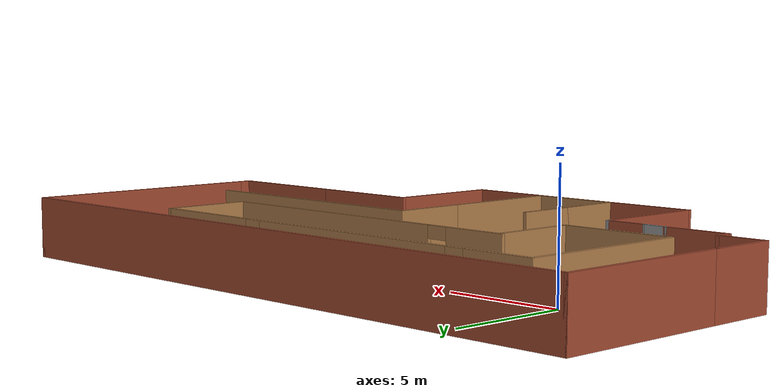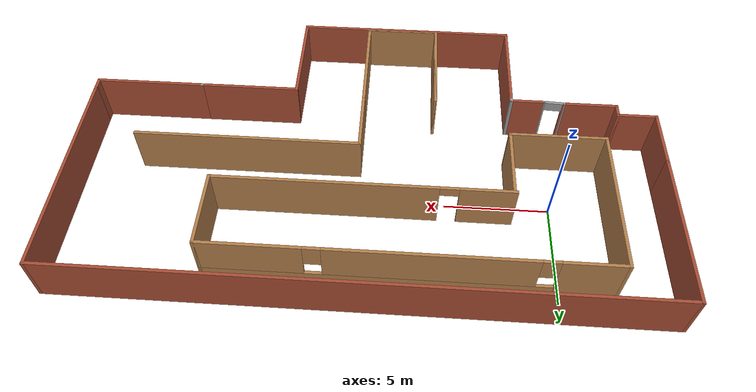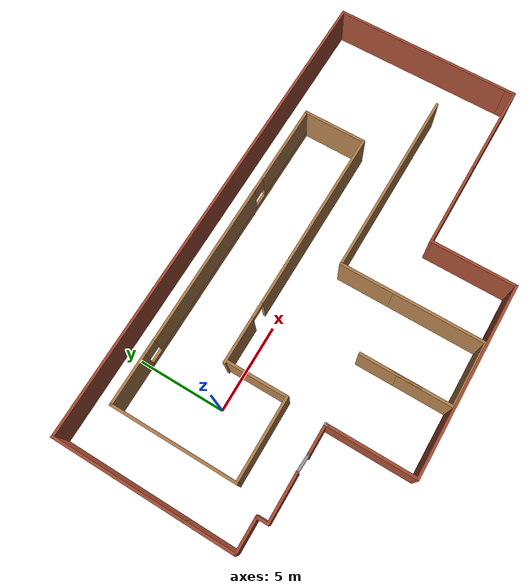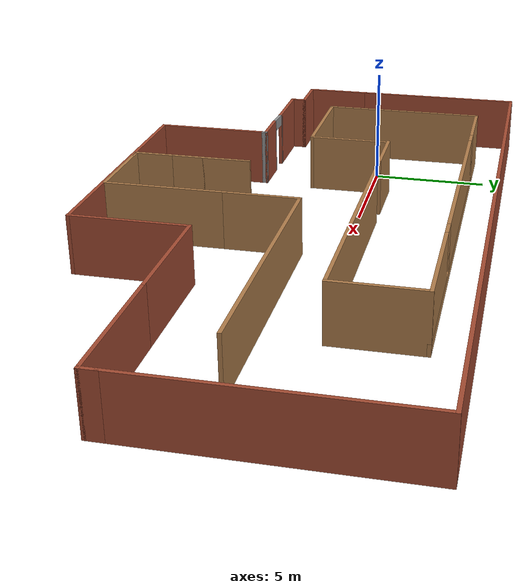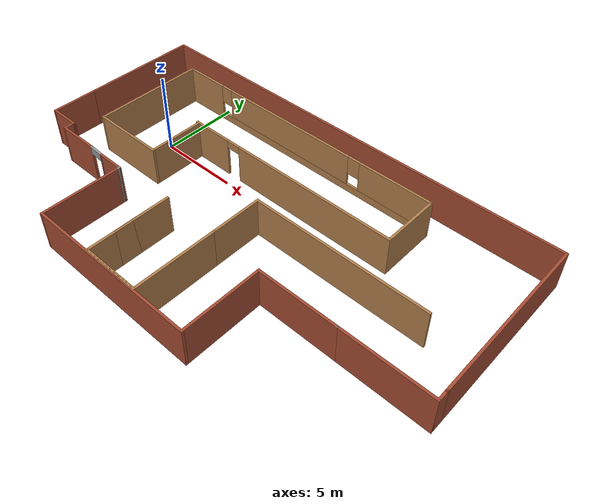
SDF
<?xml version='1.0'?>
<sdf version='1.7'>
  <model name='Building'>
    <pose>8.81 -2.02 0 0 -0 0</pose>
    <link name='Wall_10'>
      <collision name='Wall_10_Collision'>
        <geometry>
          <box>
            <size>2.75 0.15 2.5</size>
          </box>
        </geometry>
        <pose>0 0 1.25 0 -0 0</pose>
      </collision>
      <visual name='Wall_10_Visual'>
        <pose>0 0 1.25 0 -0 0</pose>
        <geometry>
          <box>
            <size>2.75 0.15 2.5</size>
          </box>
        </geometry>
        <material>
          <script>
            <uri>file://media/materials/scripts/gazebo.material</uri>
            <name>Gazebo/Bricks</name>
          </script>
          <ambient>1 1 1 1</ambient>
        </material>
        <meta>
          <layer>0</layer>
        </meta>
      </visual>
      <pose>-10.9 -2.9 0 0 -0 0</pose>
    </link>
    <link name='Wall_16'>
      <collision name='Wall_16_Collision'>
        <geometry>
          <box>
            <size>7.5 0.15 2.5</size>
          </box>
        </geometry>
        <pose>0 0 1.25 0 -0 0</pose>
      </collision>
      <visual name='Wall_16_Visual'>
        <pose>0 0 1.25 0 -0 0</pose>
        <geometry>
          <box>
            <size>7.5 0.15 2.5</size>
          </box>
        </geometry>
        <material>
          <script>
            <uri>file://media/materials/scripts/gazebo.material</uri>
            <name>Gazebo/Bricks</name>
          </script>
          <ambient>1 1 1 1</ambient>
        </material>
        <meta>
          <layer>0</layer>
        </meta>
      </visual>
      <pose>-14.05 4.225 0 0 -0 1.5708</pose>
    </link>
    <link name='Wall_17'>
      <collision name='Wall_17_Collision'>
        <geometry>
          <box>
            <size>28.25 0.15 2.5</size>
          </box>
        </geometry>
        <pose>0 0 1.25 0 -0 0</pose>
      </collision>
      <visual name='Wall_17_Visual'>
        <pose>0 0 1.25 0 -0 0</pose>
        <geometry>
          <box>
            <size>28.25 0.15 2.5</size>
          </box>
        </geometry>
        <material>
          <script>
            <uri>file://media/materials/scripts/gazebo.material</uri>
            <name>Gazebo/Bricks</name>
          </script>
          <ambient>1 1 1 1</ambient>
        </material>
        <meta>
          <layer>0</layer>
        </meta>
      </visual>
      <pose>-0 7.9 0 0 -0 0</pose>
    </link>
    <link name='Wall_18'>
      <collision name='Wall_18_Collision'>
        <geometry>
          <box>
            <size>10.5 0.15 2.5</size>
          </box>
        </geometry>
        <pose>0 0 1.25 0 -0 0</pose>
      </collision>
      <visual name='Wall_18_Visual'>
        <pose>0 0 1.25 0 -0 0</pose>
        <geometry>
          <box>
            <size>10.5 0.15 2.5</size>
          </box>
        </geometry>
        <material>
          <script>
            <uri>file://media/materials/scripts/gazebo.material</uri>
            <name>Gazebo/Bricks</name>
          </script>
          <ambient>1 1 1 1</ambient>
        </material>
        <meta>
          <layer>0</layer>
        </meta>
      </visual>
      <pose>14.05 2.725 0 0 -0 -1.5708</pose>
    </link>
    <link name='Wall_19'>
      <collision name='Wall_19_Collision'>
        <geometry>
          <box>
            <size>0.75 0.15 2.5</size>
          </box>
        </geometry>
        <pose>0 0 1.25 0 -0 0</pose>
      </collision>
      <visual name='Wall_19_Visual'>
        <pose>0 0 1.25 0 -0 0</pose>
        <geometry>
          <box>
            <size>0.75 0.15 2.5</size>
          </box>
        </geometry>
        <material>
          <script>
            <uri>file://media/materials/scripts/gazebo.material</uri>
            <name>Gazebo/Bricks</name>
          </script>
          <ambient>1 1 1 1</ambient>
        </material>
        <meta>
          <layer>0</layer>
        </meta>
      </visual>
      <pose>14.05 -2.75 0 0 -0 -1.5708</pose>
    </link>
    <link name='Wall_20'>
      <collision name='Wall_20_Collision'>
        <geometry>
          <box>
            <size>5.5 0.15 2.5</size>
          </box>
        </geometry>
        <pose>0 0 1.25 0 -0 0</pose>
      </collision>
      <visual name='Wall_20_Visual'>
        <pose>0 0 1.25 0 -0 0</pose>
        <geometry>
          <box>
            <size>5.5 0.15 2.5</size>
          </box>
        </geometry>
        <material>
          <script>
            <uri>file://media/materials/scripts/gazebo.material</uri>
            <name>Gazebo/Bricks</name>
          </script>
          <ambient>1 1 1 1</ambient>
        </material>
        <meta>
          <layer>0</layer>
        </meta>
      </visual>
      <pose>11.375 -3.05 0 0 -0 3.14159</pose>
    </link>
    <link name='Wall_21'>
      <collision name='Wall_21_Collision'>
        <geometry>
          <box>
            <size>0.15 0.15 2.5</size>
          </box>
        </geometry>
        <pose>0 0 1.25 0 -0 0</pose>
      </collision>
      <visual name='Wall_21_Visual'>
        <pose>0 0 1.25 0 -0 0</pose>
        <geometry>
          <box>
            <size>0.15 0.15 2.5</size>
          </box>
        </geometry>
        <material>
          <script>
            <uri>file://media/materials/scripts/gazebo.material</uri>
            <name>Gazebo/Grey</name>
          </script>
          <ambient>1 1 1 1</ambient>
        </material>
        <meta>
          <layer>0</layer>
        </meta>
      </visual>
      <pose>8.7 -3.05 0 0 -0 0</pose>
    </link>
    <link name='Wall_22'>
      <collision name='Wall_22_Collision'>
        <geometry>
          <box>
            <size>5 0.15 2.5</size>
          </box>
        </geometry>
        <pose>0 0 1.25 0 -0 0</pose>
      </collision>
      <visual name='Wall_22_Visual'>
        <pose>0 0 1.25 0 -0 0</pose>
        <geometry>
          <box>
            <size>5 0.15 2.5</size>
          </box>
        </geometry>
        <material>
          <script>
            <uri>file://media/materials/scripts/gazebo.material</uri>
            <name>Gazebo/Bricks</name>
          </script>
          <ambient>1 1 1 1</ambient>
        </material>
        <meta>
          <layer>0</layer>
        </meta>
      </visual>
      <pose>6.275 -3.05 0 0 -0 3.14159</pose>
    </link>
    <link name='Wall_23'>
      <collision name='Wall_23_Collision'>
        <geometry>
          <box>
            <size>5 0.15 2.5</size>
          </box>
        </geometry>
        <pose>0 0 1.25 0 -0 0</pose>
      </collision>
      <visual name='Wall_23_Visual'>
        <pose>0 0 1.25 0 -0 0</pose>
        <geometry>
          <box>
            <size>5 0.15 2.5</size>
          </box>
        </geometry>
        <material>
          <script>
            <uri>file://media/materials/scripts/gazebo.material</uri>
            <name>Gazebo/Bricks</name>
          </script>
          <ambient>1 1 1 1</ambient>
        </material>
        <meta>
          <layer>0</layer>
        </meta>
      </visual>
      <pose>3.85 -5.475 0 0 -0 -1.5708</pose>
    </link>
    <link name='Wall_24'>
      <collision name='Wall_24_Collision'>
        <geometry>
          <box>
            <size>11 0.15 2.5</size>
          </box>
        </geometry>
        <pose>0 0 1.25 0 -0 0</pose>
      </collision>
      <visual name='Wall_24_Visual'>
        <pose>0 0 1.25 0 -0 0</pose>
        <geometry>
          <box>
            <size>11 0.15 2.5</size>
          </box>
        </geometry>
        <material>
          <script>
            <uri>file://media/materials/scripts/gazebo.material</uri>
            <name>Gazebo/Bricks</name>
          </script>
          <ambient>1 1 1 1</ambient>
        </material>
        <meta>
          <layer>0</layer>
        </meta>
      </visual>
      <pose>-1.575 -7.9 0 0 -0 3.14159</pose>
    </link>
    <link name='Wall_25'>
      <collision name='Wall_25_Collision'>
        <geometry>
          <box>
            <size>5 0.15 2.5</size>
          </box>
        </geometry>
        <pose>0 0 1.25 0 -0 0</pose>
      </collision>
      <visual name='Wall_25_Visual'>
        <pose>0 0 1.25 0 -0 0</pose>
        <geometry>
          <box>
            <size>5 0.15 2.5</size>
          </box>
        </geometry>
        <material>
          <script>
            <uri>file://media/materials/scripts/gazebo.material</uri>
            <name>Gazebo/Bricks</name>
          </script>
          <ambient>1 1 1 1</ambient>
        </material>
        <meta>
          <layer>0</layer>
        </meta>
      </visual>
      <pose>-7 -5.475 0 0 -0 1.5708</pose>
    </link>
    <link name='Wall_26'>
      <collision name='Wall_26_Collision'>
        <geometry>
          <box>
            <size>0.15 0.15 2.5</size>
          </box>
        </geometry>
        <pose>0 0 1.25 0 -0 0</pose>
      </collision>
      <visual name='Wall_26_Visual'>
        <pose>0 0 1.25 0 -0 0</pose>
        <geometry>
          <box>
            <size>0.15 0.15 2.5</size>
          </box>
        </geometry>
        <material>
          <script>
            <uri>file://media/materials/scripts/gazebo.material</uri>
            <name>Gazebo/Grey</name>
          </script>
          <ambient>1 1 1 1</ambient>
        </material>
        <meta>
          <layer>0</layer>
        </meta>
      </visual>
      <pose>-7 -3.05 0 0 -0 0</pose>
    </link>
    <link name='Wall_27'>
      <collision name='Wall_27_Collision'>
        <geometry>
          <box>
            <size>0.15 0.15 2.5</size>
          </box>
        </geometry>
        <pose>0 0 1.25 0 -0 0</pose>
      </collision>
      <visual name='Wall_27_Visual'>
        <pose>0 0 1.25 0 -0 0</pose>
        <geometry>
          <box>
            <size>0.15 0.15 2.5</size>
          </box>
        </geometry>
        <material>
          <script>
            <uri>file://media/materials/scripts/gazebo.material</uri>
            <name>Gazebo/Grey</name>
          </script>
          <ambient>1 1 1 1</ambient>
        </material>
        <meta>
          <layer>0</layer>
        </meta>
      </visual>
      <pose>-7 -3.05 0 0 -0 0</pose>
    </link>
    <link name='Wall_28'>
      <collision name='Wall_28_Collision'>
        <geometry>
          <box>
            <size>0.25 0.15 2.5</size>
          </box>
        </geometry>
        <pose>0 0 1.25 0 -0 0</pose>
      </collision>
      <visual name='Wall_28_Visual'>
        <pose>0 0 1.25 0 -0 0</pose>
        <geometry>
          <box>
            <size>0.25 0.15 2.5</size>
          </box>
        </geometry>
        <material>
          <script>
            <uri>file://media/materials/scripts/gazebo.material</uri>
            <name>Gazebo/Grey</name>
          </script>
          <ambient>1 1 1 1</ambient>
        </material>
        <meta>
          <layer>0</layer>
        </meta>
      </visual>
      <pose>-7 -3 0 0 -0 1.5708</pose>
    </link>
    <link name='Wall_29'>
      <collision name='Wall_29_Collision'>
        <geometry>
          <box>
            <size>1.75 0.15 2.5</size>
          </box>
        </geometry>
        <pose>0 0 1.25 0 -0 0</pose>
      </collision>
      <visual name='Wall_29_Visual'>
        <pose>0 0 1.25 0 -0 0</pose>
        <geometry>
          <box>
            <size>1.75 0.15 2.5</size>
          </box>
        </geometry>
        <material>
          <script>
            <uri>file://media/materials/scripts/gazebo.material</uri>
            <name>Gazebo/Bricks</name>
          </script>
          <ambient>1 1 1 1</ambient>
        </material>
        <meta>
          <layer>0</layer>
        </meta>
      </visual>
      <pose>-7.8 -2.95 0 0 -0 3.14159</pose>
    </link>
    <link name='Wall_31'>
      <collision name='Wall_31_Collision'>
        <geometry>
          <box>
            <size>3.5 0.15 2.5</size>
          </box>
        </geometry>
        <pose>0 0 1.25 0 -0 0</pose>
      </collision>
      <visual name='Wall_31_Visual'>
        <pose>0 0 1.25 0 -0 0</pose>
        <geometry>
          <box>
            <size>3.5 0.15 2.5</size>
          </box>
        </geometry>
        <material>
          <script>
            <uri>file://media/materials/scripts/gazebo.material</uri>
            <name>Gazebo/Wood</name>
          </script>
          <ambient>1 1 1 1</ambient>
        </material>
        <meta>
          <layer>0</layer>
        </meta>
      </visual>
      <pose>-6.82135 0.966771 0 0 -0 -1.5708</pose>
    </link>
    <link name='Wall_32'>
      <collision name='Wall_32_Collision'>
        <geometry>
          <box>
            <size>4.75 0.15 2.5</size>
          </box>
        </geometry>
        <pose>0 0 1.25 0 -0 0</pose>
      </collision>
      <visual name='Wall_32_Visual'>
        <pose>0 0 1.25 0 -0 0</pose>
        <geometry>
          <box>
            <size>4.75 0.15 2.5</size>
          </box>
        </geometry>
        <material>
          <script>
            <uri>file://media/materials/scripts/gazebo.material</uri>
            <name>Gazebo/Wood</name>
          </script>
          <ambient>1 1 1 1</ambient>
        </material>
        <meta>
          <layer>0</layer>
        </meta>
      </visual>
      <pose>-9.12135 -0.70823 0 0 -0 3.14159</pose>
    </link>
    <link name='Wall_33'>
      <collision name='Wall_33_Collision'>
        <geometry>
          <box>
            <size>7.25 0.15 2.5</size>
          </box>
        </geometry>
        <pose>0 0 1.25 0 -0 0</pose>
      </collision>
      <visual name='Wall_33_Visual'>
        <pose>0 0 1.25 0 -0 0</pose>
        <geometry>
          <box>
            <size>7.25 0.15 2.5</size>
          </box>
        </geometry>
        <material>
          <script>
            <uri>file://media/materials/scripts/gazebo.material</uri>
            <name>Gazebo/Wood</name>
          </script>
          <ambient>1 1 1 1</ambient>
        </material>
        <meta>
          <layer>0</layer>
        </meta>
      </visual>
      <pose>-11.4214 2.84177 0 0 -0 1.5708</pose>
    </link>
    <link name='Wall_34'>
      <pose>-2.12135 6.39177 0 0 -0 0</pose>
      <visual name='Wall_34_Visual_0'>
        <pose>-7.91049 0 1.25 0 -0 0</pose>
        <geometry>
          <box>
            <size>2.92903 0.15 2.5</size>
          </box>
        </geometry>
        <material>
          <script>
            <uri>file://media/materials/scripts/gazebo.material</uri>
            <name>Gazebo/Wood</name>
          </script>
          <ambient>1 1 1 1</ambient>
        </material>
        <meta>
          <layer>0</layer>
        </meta>
      </visual>
      <collision name='Wall_34_Collision_0'>
        <geometry>
          <box>
            <size>2.92903 0.15 2.5</size>
          </box>
        </geometry>
        <pose>-7.91049 0 1.25 0 -0 0</pose>
      </collision>
      <visual name='Wall_34_Visual_1'>
        <pose>1.46452 0 0.25 0 -0 0</pose>
        <geometry>
          <box>
            <size>15.821 0.15 0.5</size>
          </box>
        </geometry>
        <material>
          <script>
            <uri>file://media/materials/scripts/gazebo.material</uri>
            <name>Gazebo/Wood</name>
          </script>
          <ambient>1 1 1 1</ambient>
        </material>
        <meta>
          <layer>0</layer>
        </meta>
      </visual>
      <collision name='Wall_34_Collision_1'>
        <geometry>
          <box>
            <size>15.821 0.15 0.5</size>
          </box>
        </geometry>
        <pose>1.46452 0 0.25 0 -0 0</pose>
      </collision>
      <visual name='Wall_34_Visual_2'>
        <pose>-0.937402 0 1.5 0 -0 0</pose>
        <geometry>
          <box>
            <size>9.41714 0.15 2</size>
          </box>
        </geometry>
        <material>
          <script>
            <uri>file://media/materials/scripts/gazebo.material</uri>
            <name>Gazebo/Wood</name>
          </script>
          <ambient>1 1 1 1</ambient>
        </material>
        <meta>
          <layer>0</layer>
        </meta>
      </visual>
      <collision name='Wall_34_Collision_2'>
        <geometry>
          <box>
            <size>9.41714 0.15 2</size>
          </box>
        </geometry>
        <pose>-0.937402 0 1.5 0 -0 0</pose>
      </collision>
      <visual name='Wall_34_Visual_3'>
        <pose>6.97308 0 1.5 0 -0 0</pose>
        <geometry>
          <box>
            <size>4.80383 0.15 2</size>
          </box>
        </geometry>
        <material>
          <script>
            <uri>file://media/materials/scripts/gazebo.material</uri>
            <name>Gazebo/Wood</name>
          </script>
          <ambient>1 1 1 1</ambient>
        </material>
        <meta>
          <layer>0</layer>
        </meta>
      </visual>
      <collision name='Wall_34_Collision_3'>
        <geometry>
          <box>
            <size>4.80383 0.15 2</size>
          </box>
        </geometry>
        <pose>6.97308 0 1.5 0 -0 0</pose>
      </collision>
      <visual name='Wall_34_Visual_4'>
        <pose>-6.04597 0 1.9 0 -0 0</pose>
        <geometry>
          <box>
            <size>0.8 0.15 1.2</size>
          </box>
        </geometry>
        <material>
          <script>
            <uri>file://media/materials/scripts/gazebo.material</uri>
            <name>Gazebo/Wood</name>
          </script>
          <ambient>1 1 1 1</ambient>
        </material>
        <meta>
          <layer>0</layer>
        </meta>
      </visual>
      <collision name='Wall_34_Collision_4'>
        <geometry>
          <box>
            <size>0.8 0.15 1.2</size>
          </box>
        </geometry>
        <pose>-6.04597 0 1.9 0 -0 0</pose>
      </collision>
      <visual name='Wall_34_Visual_5'>
        <pose>4.17117 0 1.9 0 -0 0</pose>
        <geometry>
          <box>
            <size>0.8 0.15 1.2</size>
          </box>
        </geometry>
        <material>
          <script>
            <uri>file://media/materials/scripts/gazebo.material</uri>
            <name>Gazebo/Wood</name>
          </script>
          <ambient>1 1 1 1</ambient>
        </material>
        <meta>
          <layer>0</layer>
        </meta>
      </visual>
      <collision name='Wall_34_Collision_5'>
        <geometry>
          <box>
            <size>0.8 0.15 1.2</size>
          </box>
        </geometry>
        <pose>4.17117 0 1.9 0 -0 0</pose>
      </collision>
    </link>
    <link name='Wall_35'>
      <collision name='Wall_35_Collision'>
        <geometry>
          <box>
            <size>3.75 0.15 2.5</size>
          </box>
        </geometry>
        <pose>0 0 1.25 0 -0 0</pose>
      </collision>
      <visual name='Wall_35_Visual'>
        <pose>0 0 1.25 0 -0 0</pose>
        <geometry>
          <box>
            <size>3.75 0.15 2.5</size>
          </box>
        </geometry>
        <material>
          <script>
            <uri>file://media/materials/scripts/gazebo.material</uri>
            <name>Gazebo/Wood</name>
          </script>
          <ambient>1 1 1 1</ambient>
        </material>
        <meta>
          <layer>0</layer>
        </meta>
      </visual>
      <pose>7.17865 4.59177 0 0 -0 -1.5708</pose>
    </link>
    <link name='Wall_36'>
      <pose>0.128645 2.79177 0 0 -0 3.14159</pose>
      <visual name='Wall_36_Visual_0'>
        <pose>-1.78083 0 1.25 0 -0 0</pose>
        <geometry>
          <box>
            <size>10.6883 0.15 2.5</size>
          </box>
        </geometry>
        <material>
          <script>
            <uri>file://media/materials/scripts/gazebo.material</uri>
            <name>Gazebo/Wood</name>
          </script>
          <ambient>1 1 1 1</ambient>
        </material>
        <meta>
          <layer>0</layer>
        </meta>
      </visual>
      <collision name='Wall_36_Collision_0'>
        <geometry>
          <box>
            <size>10.6883 0.15 2.5</size>
          </box>
        </geometry>
        <pose>-1.78083 0 1.25 0 -0 0</pose>
      </collision>
      <visual name='Wall_36_Visual_1'>
        <pose>5.79417 0 1.25 0 -0 0</pose>
        <geometry>
          <box>
            <size>2.66166 0.15 2.5</size>
          </box>
        </geometry>
        <material>
          <script>
            <uri>file://media/materials/scripts/gazebo.material</uri>
            <name>Gazebo/Wood</name>
          </script>
          <ambient>1 1 1 1</ambient>
        </material>
        <meta>
          <layer>0</layer>
        </meta>
      </visual>
      <collision name='Wall_36_Collision_1'>
        <geometry>
          <box>
            <size>2.66166 0.15 2.5</size>
          </box>
        </geometry>
        <pose>5.79417 0 1.25 0 -0 0</pose>
      </collision>
      <visual name='Wall_36_Visual_2'>
        <pose>4.01334 0 2.25 0 -0 0</pose>
        <geometry>
          <box>
            <size>0.9 0.15 0.5</size>
          </box>
        </geometry>
        <material>
          <script>
            <uri>file://media/materials/scripts/gazebo.material</uri>
            <name>Gazebo/Wood</name>
          </script>
          <ambient>1 1 1 1</ambient>
        </material>
        <meta>
          <layer>0</layer>
        </meta>
      </visual>
      <collision name='Wall_36_Collision_2'>
        <geometry>
          <box>
            <size>0.9 0.15 0.5</size>
          </box>
        </geometry>
        <pose>4.01334 0 2.25 0 -0 0</pose>
      </collision>
    </link>
    <link name='Wall_38'>
      <pose>-9.1 -2.925 0 0 -0 -0.049958</pose>
      <visual name='Wall_38_Visual_0'>
        <pose>-0.521361 0 1.25 0 -0 0</pose>
        <geometry>
          <box>
            <size>0.108527 0.15 2.5</size>
          </box>
        </geometry>
        <material>
          <script>
            <uri>file://media/materials/scripts/gazebo.material</uri>
            <name>Gazebo/Grey</name>
          </script>
          <ambient>1 1 1 1</ambient>
        </material>
        <meta>
          <layer>0</layer>
        </meta>
      </visual>
      <collision name='Wall_38_Collision_0'>
        <geometry>
          <box>
            <size>0.108527 0.15 2.5</size>
          </box>
        </geometry>
        <pose>-0.521361 0 1.25 0 -0 0</pose>
      </collision>
      <visual name='Wall_38_Visual_1'>
        <pose>0.504264 0 1.25 0 -0 0</pose>
        <geometry>
          <box>
            <size>0.142722 0.15 2.5</size>
          </box>
        </geometry>
        <material>
          <script>
            <uri>file://media/materials/scripts/gazebo.material</uri>
            <name>Gazebo/Grey</name>
          </script>
          <ambient>1 1 1 1</ambient>
        </material>
        <meta>
          <layer>0</layer>
        </meta>
      </visual>
      <collision name='Wall_38_Collision_1'>
        <geometry>
          <box>
            <size>0.142722 0.15 2.5</size>
          </box>
        </geometry>
        <pose>0.504264 0 1.25 0 -0 0</pose>
      </collision>
      <visual name='Wall_38_Visual_2'>
        <pose>-0.017097 0 2.25 0 -0 0</pose>
        <geometry>
          <box>
            <size>0.9 0.15 0.5</size>
          </box>
        </geometry>
        <material>
          <script>
            <uri>file://media/materials/scripts/gazebo.material</uri>
            <name>Gazebo/Grey</name>
          </script>
          <ambient>1 1 1 1</ambient>
        </material>
        <meta>
          <layer>0</layer>
        </meta>
      </visual>
      <collision name='Wall_38_Collision_2'>
        <geometry>
          <box>
            <size>0.9 0.15 0.5</size>
          </box>
        </geometry>
        <pose>-0.017097 0 2.25 0 -0 0</pose>
      </collision>
    </link>
    <link name='Wall_41'>
      <collision name='Wall_41_Collision'>
        <geometry>
          <box>
            <size>3.5 0.15 2.5</size>
          </box>
        </geometry>
        <pose>0 0 1.25 0 -0 0</pose>
      </collision>
      <visual name='Wall_41_Visual'>
        <pose>0 0 1.25 0 -0 0</pose>
        <geometry>
          <box>
            <size>3.5 0.15 2.5</size>
          </box>
        </geometry>
        <material>
          <script>
            <uri>file://media/materials/scripts/gazebo.material</uri>
            <name>Gazebo/Wood</name>
          </script>
          <ambient>1 1 1 1</ambient>
        </material>
        <meta>
          <layer>0</layer>
        </meta>
      </visual>
      <pose>-3.1974 -4.40362 0 0 -0 1.5708</pose>
    </link>
    <link name='Wall_42'>
      <collision name='Wall_42_Collision'>
        <geometry>
          <box>
            <size>5.25 0.15 2.5</size>
          </box>
        </geometry>
        <pose>0 0 1.25 0 -0 0</pose>
      </collision>
      <visual name='Wall_42_Visual'>
        <pose>0 0 1.25 0 -0 0</pose>
        <geometry>
          <box>
            <size>5.25 0.15 2.5</size>
          </box>
        </geometry>
        <material>
          <script>
            <uri>file://media/materials/scripts/gazebo.material</uri>
            <name>Gazebo/Wood</name>
          </script>
          <ambient>1 1 1 1</ambient>
        </material>
        <meta>
          <layer>0</layer>
        </meta>
      </visual>
      <pose>-3.1974 -5.27862 0 0 -0 -1.5708</pose>
    </link>
    <link name='Wall_43'>
      <collision name='Wall_43_Collision'>
        <geometry>
          <box>
            <size>3.75 0.15 2.5</size>
          </box>
        </geometry>
        <pose>0 0 1.25 0 -0 0</pose>
      </collision>
      <visual name='Wall_43_Visual'>
        <pose>0 0 1.25 0 -0 0</pose>
        <geometry>
          <box>
            <size>3.75 0.15 2.5</size>
          </box>
        </geometry>
        <material>
          <script>
            <uri>file://media/materials/scripts/gazebo.material</uri>
            <name>Gazebo/Wood</name>
          </script>
          <ambient>1 1 1 1</ambient>
        </material>
        <meta>
          <layer>0</layer>
        </meta>
      </visual>
      <pose>-1.3974 -7.82862 0 0 -0 0</pose>
    </link>
    <link name='Wall_44'>
      <collision name='Wall_44_Collision'>
        <geometry>
          <box>
            <size>5.25 0.15 2.5</size>
          </box>
        </geometry>
        <pose>0 0 1.25 0 -0 0</pose>
      </collision>
      <visual name='Wall_44_Visual'>
        <pose>0 0 1.25 0 -0 0</pose>
        <geometry>
          <box>
            <size>5.25 0.15 2.5</size>
          </box>
        </geometry>
        <material>
          <script>
            <uri>file://media/materials/scripts/gazebo.material</uri>
            <name>Gazebo/Wood</name>
          </script>
          <ambient>1 1 1 1</ambient>
        </material>
        <meta>
          <layer>0</layer>
        </meta>
      </visual>
      <pose>0.4026 -5.27862 0 0 -0 1.5708</pose>
    </link>
    <link name='Wall_45'>
      <collision name='Wall_45_Collision'>
        <geometry>
          <box>
            <size>3.25 0.15 2.5</size>
          </box>
        </geometry>
        <pose>0 0 1.25 0 -0 0</pose>
      </collision>
      <visual name='Wall_45_Visual'>
        <pose>0 0 1.25 0 -0 0</pose>
        <geometry>
          <box>
            <size>3.25 0.15 2.5</size>
          </box>
        </geometry>
        <material>
          <script>
            <uri>file://media/materials/scripts/gazebo.material</uri>
            <name>Gazebo/Wood</name>
          </script>
          <ambient>1 1 1 1</ambient>
        </material>
        <meta>
          <layer>0</layer>
        </meta>
      </visual>
      <pose>0.4026 -1.17862 0 0 -0 1.5708</pose>
    </link>
    <link name='Wall_46'>
      <collision name='Wall_46_Collision'>
        <geometry>
          <box>
            <size>11 0.15 2.5</size>
          </box>
        </geometry>
        <pose>0 0 1.25 0 -0 0</pose>
      </collision>
      <visual name='Wall_46_Visual'>
        <pose>0 0 1.25 0 -0 0</pose>
        <geometry>
          <box>
            <size>11 0.15 2.5</size>
          </box>
        </geometry>
        <material>
          <script>
            <uri>file://media/materials/scripts/gazebo.material</uri>
            <name>Gazebo/Wood</name>
          </script>
          <ambient>1 1 1 1</ambient>
        </material>
        <meta>
          <layer>0</layer>
        </meta>
      </visual>
      <pose>5.8276 0.371382 0 0 -0 0</pose>
    </link>
    <link name='Wall_7'>
      <collision name='Wall_7_Collision'>
        <geometry>
          <box>
            <size>3 0.15 2.5</size>
          </box>
        </geometry>
        <pose>0 0 1.25 0 -0 0</pose>
      </collision>
      <visual name='Wall_7_Visual'>
        <pose>0 0 1.25 0 -0 0</pose>
        <geometry>
          <box>
            <size>3 0.15 2.5</size>
          </box>
        </geometry>
        <material>
          <script>
            <uri>file://media/materials/scripts/gazebo.material</uri>
            <name>Gazebo/Bricks</name>
          </script>
          <ambient>1 1 1 1</ambient>
        </material>
        <meta>
          <layer>0</layer>
        </meta>
      </visual>
      <pose>-14.05 -0.875 0 0 -0 -1.5708</pose>
    </link>
    <link name='Wall_8'>
      <collision name='Wall_8_Collision'>
        <geometry>
          <box>
            <size>2 0.15 2.5</size>
          </box>
        </geometry>
        <pose>0 0 1.25 0 -0 0</pose>
      </collision>
      <visual name='Wall_8_Visual'>
        <pose>0 0 1.25 0 -0 0</pose>
        <geometry>
          <box>
            <size>2 0.15 2.5</size>
          </box>
        </geometry>
        <material>
          <script>
            <uri>file://media/materials/scripts/gazebo.material</uri>
            <name>Gazebo/Bricks</name>
          </script>
          <ambient>1 1 1 1</ambient>
        </material>
        <meta>
          <layer>0</layer>
        </meta>
      </visual>
      <pose>-13.125 -2.3 0 0 -0 0</pose>
    </link>
    <link name='Wall_9'>
      <collision name='Wall_9_Collision'>
        <geometry>
          <box>
            <size>0.75 0.15 2.5</size>
          </box>
        </geometry>
        <pose>0 0 1.25 0 -0 0</pose>
      </collision>
      <visual name='Wall_9_Visual'>
        <pose>0 0 1.25 0 -0 0</pose>
        <geometry>
          <box>
            <size>0.75 0.15 2.5</size>
          </box>
        </geometry>
        <material>
          <script>
            <uri>file://media/materials/scripts/gazebo.material</uri>
            <name>Gazebo/Bricks</name>
          </script>
          <ambient>1 1 1 1</ambient>
        </material>
        <meta>
          <layer>0</layer>
        </meta>
      </visual>
      <pose>-12.2 -2.6 0 0 -0 -1.5708</pose>
    </link>
    <static>1</static>
  </model>
</sdf>
